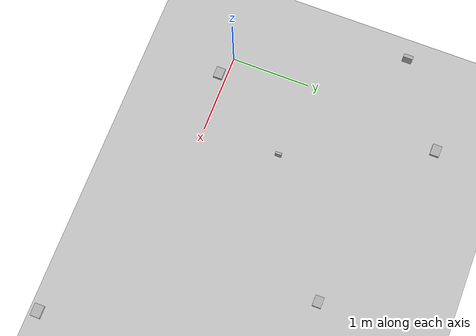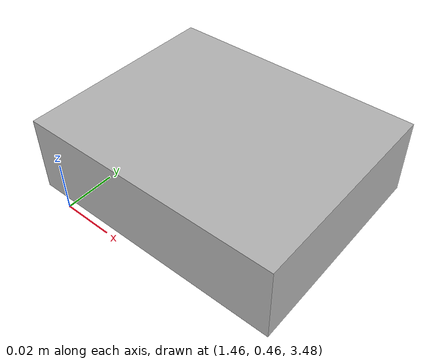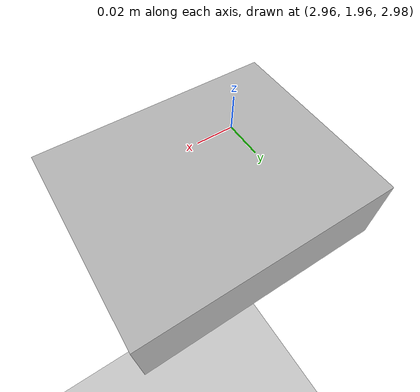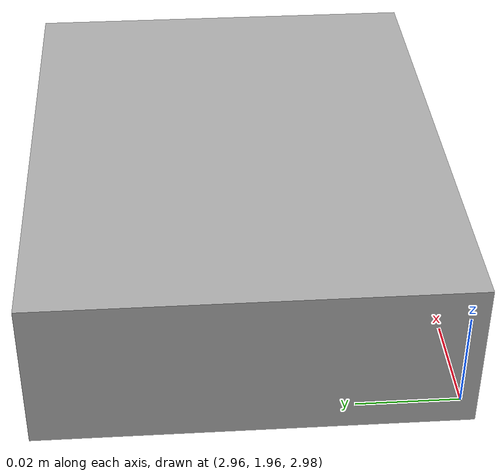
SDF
<?xml version="1.0" ?>
<sdf version="1.5">
  <world name="default">
    <!-- A global light source -->
    <include>
      <uri>model://sun</uri>
    </include>
    <!-- A ground plane -->
    <include>
      <uri>model://ground_plane</uri>
    </include>
    <include>
      <uri>model://asphalt_plane</uri>
    </include>
    <physics name='default_physics' default='0' type='ode'>
      <gravity>0 0 -9.8066</gravity>
      <ode>
        <solver>
          <type>quick</type>
          <iters>10</iters>
          <sor>1.3</sor>
          <use_dynamic_moi_rescaling>0</use_dynamic_moi_rescaling>
        </solver>
        <constraints>
          <cfm>0</cfm>
          <erp>0.2</erp>
          <contact_max_correcting_vel>100</contact_max_correcting_vel>
          <contact_surface_layer>0.001</contact_surface_layer>
        </constraints>
      </ode>
      <max_step_size>0.004</max_step_size>
      <real_time_factor>1</real_time_factor>
      <real_time_update_rate>250</real_time_update_rate>
      <magnetic_field>6.0e-6 2.3e-5 -4.2e-5</magnetic_field>
    </physics>

    <!-- WALLS -->

    <!-- Anchors -->
    <model name="uwb_anchor0">
      <pose>1.0100 0.979909 0.104384 0 0 0</pose>
      <static>1</static>
      <link name="link">
        <visual name="visual">
          <geometry>
            <box>
              <size>0.03 0.08 0.1</size>
            </box>
          </geometry>
        </visual>
      </link>
    </model>

    <model name="uwb_anchor1">
      <pose>1 2 4 0 0 0</pose>
      <static>1</static>
      <link name="link">
        <visual name="visual">
          <geometry>
            <box>
              <size>0.03 0.08 0.1</size>
            </box>
          </geometry>
        </visual>
      </link>
    </model>

    <model name="uwb_anchor2">
      <pose>3 2 3 0 0 0</pose>
      <static>1</static>
      <link name="link">
        <visual name="visual">
          <geometry>
            <box>
              <size>0.1 0.08 0.03</size>
            </box>
          </geometry>
        </visual>
      </link>
    </model>

    <model name="uwb_anchor3">
      <pose>4 0 4 0 0 0</pose>
      <static>1</static>
      <link name="link">
        <visual name="visual">
          <geometry>
            <box>
              <size>0.1 0.08 0.03</size>
            </box>
          </geometry>
        </visual>
      </link>
    </model>

    <model name="uwb_anchor4">
      <pose>1.5 2.5 3.5 0 0 0</pose>
      <static>1</static>
      <link name="link">
        <visual name="visual">
          <geometry>
            <box>
              <size>0.1 0.08 0.03</size>
            </box>
          </geometry>
        </visual>
      </link>
    </model>

    <model name="uwb_anchor5">
      <pose>1.5 0.5 3.5 0 0 0</pose>
      <static>1</static>
      <link name="link">
        <visual name="visual">
          <geometry>
            <box>
              <size>0.1 0.08 0.03</size>
            </box>
          </geometry>
        </visual>
      </link>
    </model>

  </world>
</sdf>
